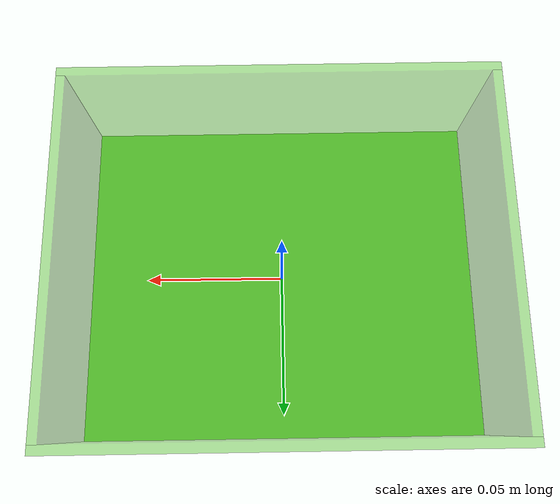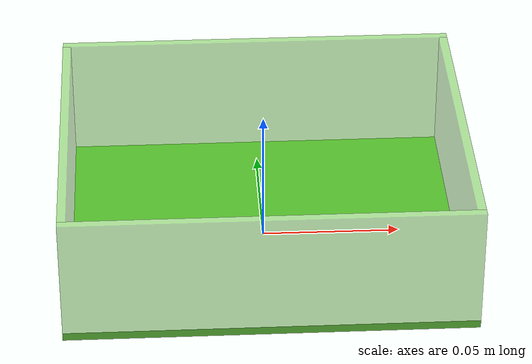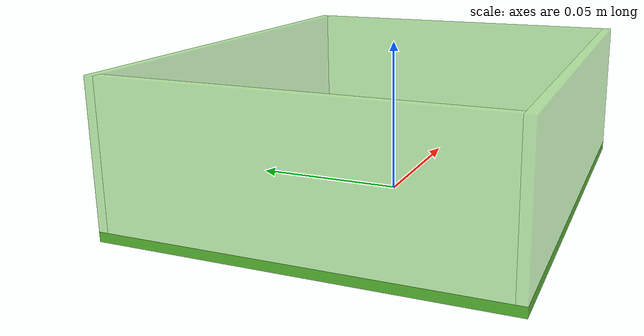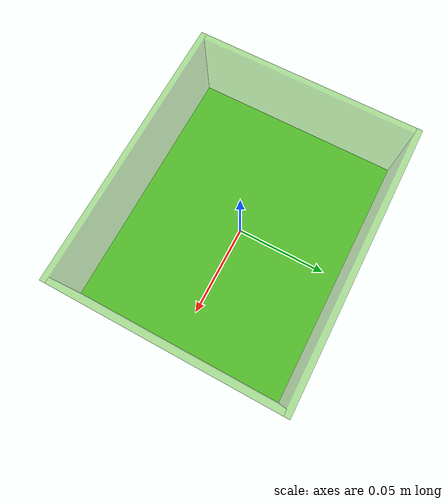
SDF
<?xml version="1.0" ?>
<sdf version="1.10">
  <model name="open_box">
    <static>false</static>

    <!-- ________________ Bottom panel ________________ -->
    <!-- size = 0.146 x 0.122 x 0.003, mass = 0.080 kg -->
    <link name="bottom">
      <pose>0 0 0.0015 0 0 0</pose>

      <inertial>
        <mass>0.080</mass>
        <inertia>
          <ixx>2.4707e-05</ixx>
          <iyy>2.9645e-05</iyy>
          <izz>2.9565e-03</izz>
        </inertia>
      </inertial>

      <collision name="collision">
        <geometry><box><size>0.146 0.122 0.003</size></box></geometry>
      </collision>
      <visual name="visual">
        <geometry><box><size>0.146 0.122 0.003</size></box></geometry>
        <material>
            <ambient>0.2 0.7 1.0 0.8</ambient>   <!-- RGBA, a = 0.4 → 60 % transparent -->
            <diffuse>0.2 0.7 .0 0.8</diffuse>
        </material>
      </visual>
    </link>

    <!-- ________________ Front wall ________________ -->
    <!-- size = 0.146 x 0.003 x 0.045, mass = 0.040 kg -->
    <link name="front_wall">
      <pose>0 -0.0595 0.0255 0 0 0</pose>

      <inertial>
        <mass>0.040</mass>
        <inertia>
          <ixx>6.8250e-06</ixx>
          <iyy>6.8258e-06</iyy>
          <izz>7.1039e-04</izz>
        </inertia>
      </inertial>

      <collision name="collision">
        <geometry><box><size>0.146 0.003 0.045</size></box></geometry>
      </collision>
      <visual name="visual">
        <geometry><box><size>0.146 0.003 0.045</size></box></geometry>
        <material>
  <ambient>0.2 0.7 1.0 0.4</ambient>   <!-- RGBA, a = 0.4 → 60 % transparent -->
  <diffuse>0.2 0.7 .0 0.4</diffuse>
</material>
      </visual>
    </link>

    <!-- ________________ Back wall ________________ -->
    <!-- size = 0.146 x 0.003 x 0.045, mass = 0.040 kg -->
    <link name="back_wall">
      <pose>0 0.0595 0.0255 0 0 0</pose>

      <inertial>
        <mass>0.040</mass>
        <inertia>
          <ixx>6.8250e-06</ixx>
          <iyy>6.8258e-06</iyy>
          <izz>7.1039e-04</izz>
        </inertia>
      </inertial>

      <collision name="collision">
        <geometry><box><size>0.146 0.003 0.045</size></box></geometry>
      </collision>
      <visual name="visual">
        <geometry><box><size>0.146 0.003 0.045</size></box></geometry>
        <material>
  <ambient>0.2 0.7 1.0 0.4</ambient>   <!-- RGBA, a = 0.4 → 60 % transparent -->
  <diffuse>0.2 0.7 .0 0.4</diffuse>
</material>
      </visual>
    </link>

    <!-- ________________ Left wall ________________ -->
    <!-- size = 0.003 x 0.116 x 0.045, mass = 0.020 kg -->
    <link name="left_wall">
      <pose>-0.0715 0 0.0255 0 0 0</pose>

      <inertial>
        <mass>0.020</mass>
        <inertia>
          <ixx>4.0257e-06</ixx>
          <iyy>1.7124e-04</iyy>
          <izz>1.7124e-04</izz>
        </inertia>
      </inertial>

      <collision name="collision">
        <geometry><box><size>0.003 0.116 0.045</size></box></geometry>
      </collision>
      <visual name="visual">
        <geometry><box><size>0.003 0.116 0.045</size></box></geometry>
        <material>
  <ambient>0.2 0.7 1.0 0.4</ambient>   <!-- RGBA, a = 0.4 → 60 % transparent -->
  <diffuse>0.2 0.7 .0 0.4</diffuse>
</material>
      </visual>
    </link>

    <!-- ________________ Right wall ________________ -->
    <!-- size = 0.003 x 0.116 x 0.045, mass = 0.020 kg -->
    <link name="right_wall">
      <pose>0.0715 0 0.0255 0 0 0</pose>

      <inertial>
        <mass>0.020</mass>
        <inertia>
          <ixx>4.0257e-06</ixx>
          <iyy>1.7124e-04</iyy>
          <izz>1.7124e-04</izz>
        </inertia>
      </inertial>

      <collision name="collision">
        <geometry><box><size>0.003 0.116 0.045</size></box></geometry>
      </collision>
      <visual name="visual">
        <geometry><box><size>0.003 0.116 0.045</size></box></geometry>
        <material>
  <ambient>0.2 0.7 1.0 0.4</ambient>   <!-- RGBA, a = 0.4 → 60 % transparent -->
  <diffuse>0.2 0.7 .0 0.4</diffuse>
</material>
      </visual>
    </link>

    <joint name="bottom_to_front" type="fixed">
    <parent>bottom</parent>
    <child>front_wall</child>
    </joint>

    <joint name="bottom_to_back" type="fixed">
    <parent>bottom</parent>
    <child>back_wall</child>
    </joint>

    <joint name="bottom_to_left" type="fixed">
    <parent>bottom</parent>
    <child>left_wall</child>
    </joint>

    <joint name="bottom_to_right" type="fixed">
    <parent>bottom</parent>
    <child>right_wall</child>
    </joint>
  </model>
</sdf>
